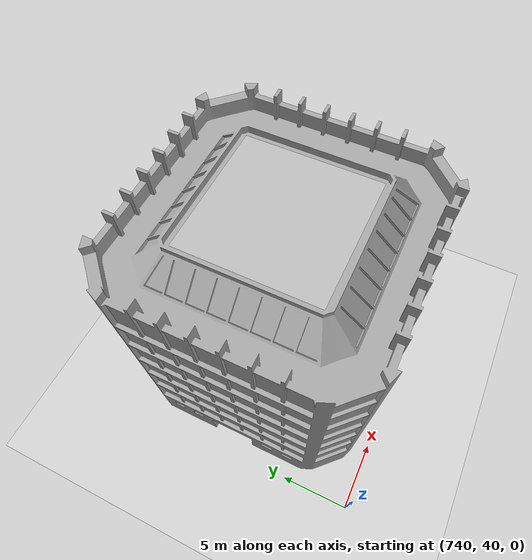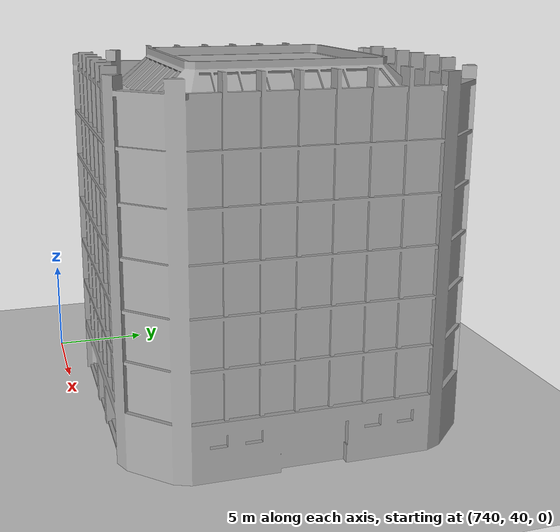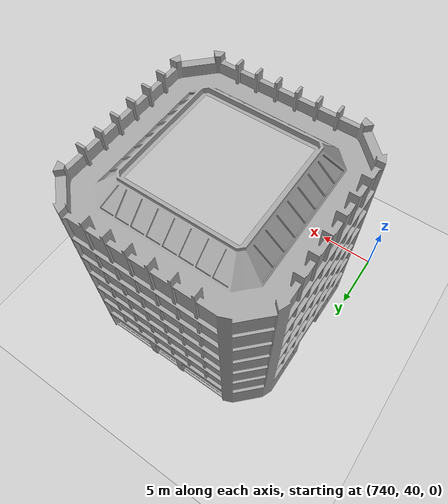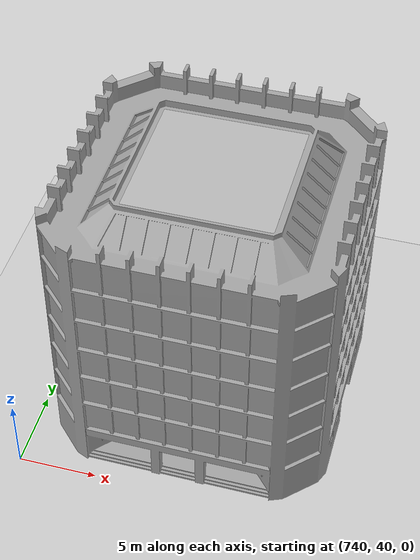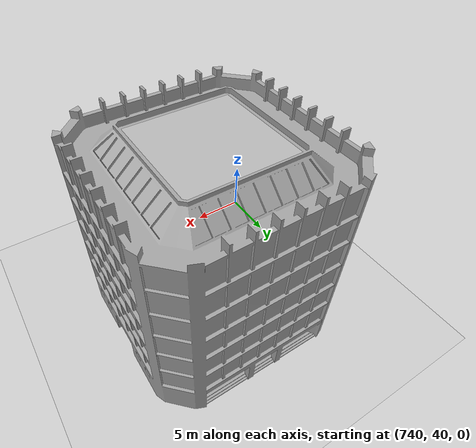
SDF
<sdf version='1.6'>
  <world name='default'>

    <spherical_coordinates>
      <surface_model>EARTH_WGS84</surface_model>
      <latitude_deg>-35.363261</latitude_deg>
      <longitude_deg>149.165230</longitude_deg>
      <elevation>584</elevation>
      <heading_deg>87</heading_deg>
    </spherical_coordinates>

    <include>
      <uri>model://sun</uri>
    </include>
    <gravity>0 0 -9.8066</gravity>

    <physics name='default_physics' default='0' type='ode'>
      <ode>
        <solver>
          <type>quick</type>
          <iters>100</iters>
          <sor>1.0</sor>
        </solver>
        <constraints>
          <cfm>0</cfm>
          <erp>0.2</erp>
          <contact_max_correcting_vel>0.1</contact_max_correcting_vel>
          <contact_surface_layer>0.0</contact_surface_layer>
        </constraints>
      </ode>
      <max_step_size>0.0025</max_step_size>
      <real_time_update_rate>400</real_time_update_rate>
      <real_time_factor>1</real_time_factor>
    </physics>

    <gui>
      <camera name="user_camera">
        <pose>-5 0 1 0 0.2 0</pose>
      </camera>
    </gui>

    <model name="ground_plane">
      <static>true</static>
      <link name="link">
        <collision name="collision">
          <geometry>
            <plane>
              <normal>0 0 1</normal>
              <size>5000 5000</size>
            </plane>
          </geometry>
          <surface>
            <friction>
              <ode>
                <mu>100</mu>
                <mu2>50</mu2>
              </ode>
            </friction>
          </surface>
        </collision>

        <visual name="runway">
          <pose>000 0 0.005 0 0 0</pose>
          <cast_shadows>false</cast_shadows>
          <geometry>
            <plane>
              <normal>0 0 1</normal>
              <size>1829 45</size>
            </plane>
          </geometry>
          <material>
            <script>
              <uri>file://media/materials/scripts/gazebo.material</uri>
              <name>Gazebo/Runway</name>
            </script>
          </material>
        </visual>

        <visual name="grass">
          <pose>0 0 -0.1 0 0 0</pose>
          <cast_shadows>false</cast_shadows>
          <geometry>
            <plane>
              <normal>0 0 1</normal>
              <size>5000 5000</size>
            </plane>
          </geometry>
          <material>
            <script>
              <uri>file://media/materials/scripts/gazebo.material</uri>
              <name>Gazebo/Grass</name>
            </script>
          </material>
        </visual>
      </link>
    </model>

    <model name='Office Building'>
      <static>1</static>
      <link name='office_link'>
        <collision name='collision'>
          <pose frame=''>750 50 0 0 0 0</pose>
          <geometry>
            <mesh>
              <uri>model://office_building/meshes/office_building.dae</uri>
            </mesh>
          </geometry>
          <max_contacts>10</max_contacts>
          <surface>
            <contact>
              <ode/>
            </contact>
            <bounce/>
            <friction>
              <torsional>
                <ode/>
              </torsional>
              <ode/>
            </friction>
          </surface>
        </collision>
        <visual name='visual'>
          <pose frame=''>750 50 0 0 0 0</pose>
          <geometry>
            <mesh>
              <uri>model://office_building/meshes/office_building.dae</uri>
            </mesh>
          </geometry>
        </visual>

        <visual name='apriltag_Visual'>
          <pose frame=''>750 50 18.215 0.0 -0 0</pose>
          <geometry>
            <box>
              <size>8.9 8.9 0.001</size>
            </box>
          </geometry>
          <material>
            <script>
              <uri>model://Apriltag36_11_00000/materials/scripts</uri>
              <uri>model://Apriltag36_11_00000/materials/textures</uri>
              <name>Apriltag36_11_00000</name>
            </script>
          </material>
        </visual>
      </link>
    </model>

  </world>
</sdf>
